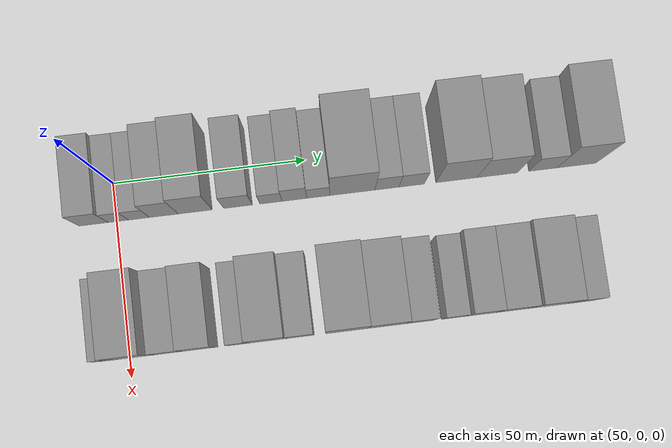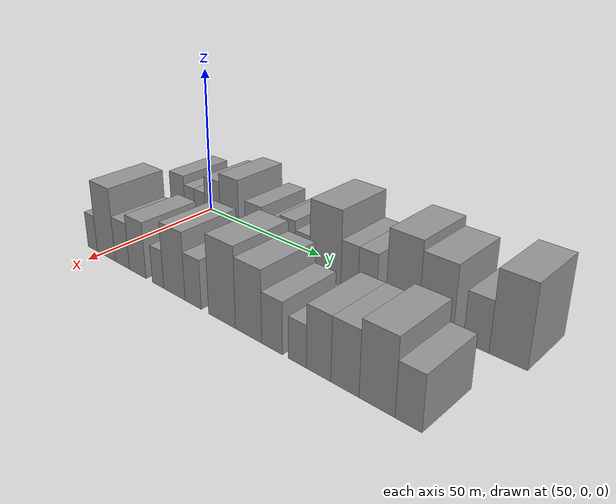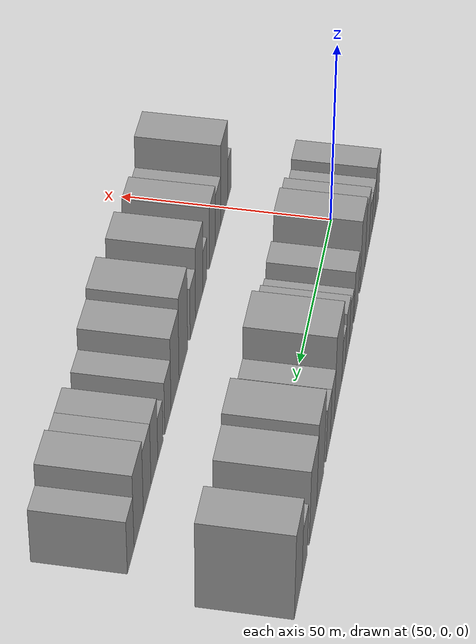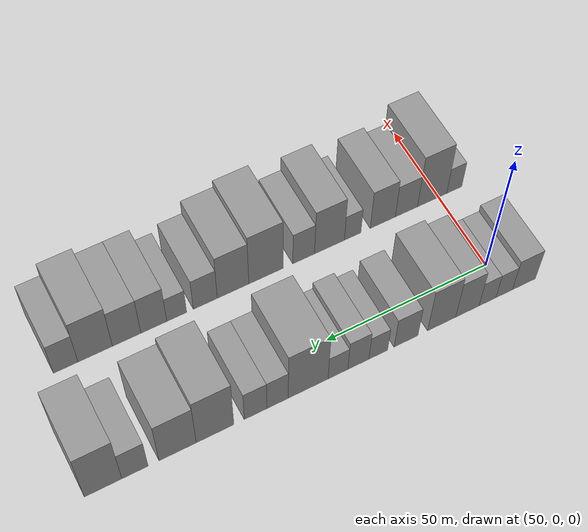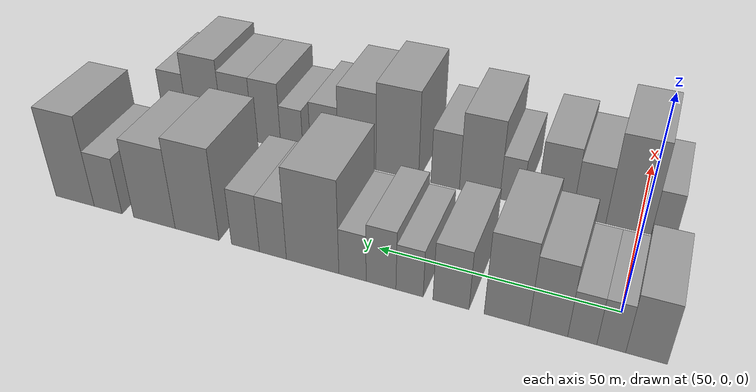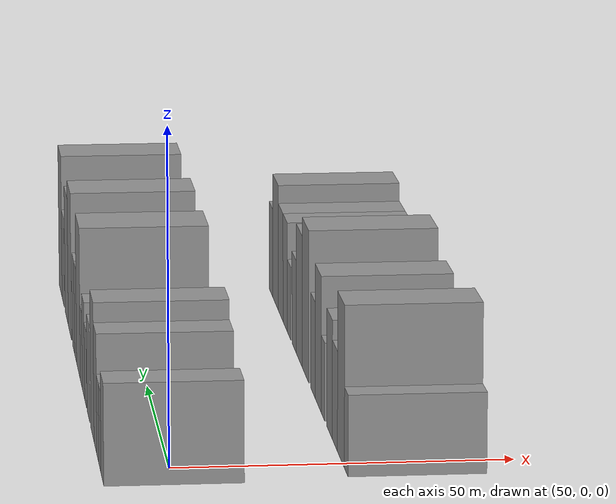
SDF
<sdf version="1.6">
 <world name="default">
  <model name="building_30">
   <static>1</static>
   <pose>50.0000 -5.8163 0 0.000000 0.000000 0.000000</pose>
   <link name="link">
    <pose>0 0 7.50 0 0 0</pose>
    <collision name="collision"><geometry><box><size>20.0000 7.4415 15.0000</size></box></geometry></collision>
    <visual name="visual">
     <cast_shadows>0</cast_shadows>
     <geometry><box><size>20.0000 7.4415 15.0000</size></box></geometry>
     <material>
      <script>
       <uri>model://grey_wall/materials/scripts</uri>
       <uri>model://grey_wall/materials/textures</uri>
       <name>vrc/grey_wall</name>
      </script>
     </material>
    </visual>
   </link>
  </model>
  <model name="building_31">
   <static>1</static>
   <pose>50.0000 0.5402 0 0.000000 0.000000 0.000000</pose>
   <link name="link">
    <pose>0 0 6.00 0 0 0</pose>
    <collision name="collision"><geometry><box><size>20.0000 5.2715 12.0000</size></box></geometry></collision>
    <visual name="visual">
     <cast_shadows>0</cast_shadows>
     <geometry><box><size>20.0000 5.2715 12.0000</size></box></geometry>
     <material>
      <script>
       <uri>model://grey_wall/materials/scripts</uri>
       <uri>model://grey_wall/materials/textures</uri>
       <name>vrc/grey_wall</name>
      </script>
     </material>
    </visual>
   </link>
  </model>
  <model name="building_32">
   <static>1</static>
   <pose>50.0000 5.8789 0 0.000000 0.000000 0.000000</pose>
   <link name="link">
    <pose>0 0 6.00 0 0 0</pose>
    <collision name="collision"><geometry><box><size>20.0000 5.4058 12.0000</size></box></geometry></collision>
    <visual name="visual">
     <cast_shadows>0</cast_shadows>
     <geometry><box><size>20.0000 5.4058 12.0000</size></box></geometry>
     <material>
      <script>
       <uri>model://grey_wall/materials/scripts</uri>
       <uri>model://grey_wall/materials/textures</uri>
       <name>vrc/grey_wall</name>
      </script>
     </material>
    </visual>
   </link>
  </model>
  <model name="building_33">
   <static>1</static>
   <pose>50.0000 12.2712 0 0.000000 0.000000 0.000000</pose>
   <link name="link">
    <pose>0 0 9.00 0 0 0</pose>
    <collision name="collision"><geometry><box><size>20.0000 7.3789 18.0000</size></box></geometry></collision>
    <visual name="visual">
     <cast_shadows>0</cast_shadows>
     <geometry><box><size>20.0000 7.3789 18.0000</size></box></geometry>
     <material>
      <script>
       <uri>model://grey_wall/materials/scripts</uri>
       <uri>model://grey_wall/materials/textures</uri>
       <name>vrc/grey_wall</name>
      </script>
     </material>
    </visual>
   </link>
  </model>
  <model name="building_34">
   <static>1</static>
   <pose>50.0000 20.3390 0 0.000000 0.000000 0.000000</pose>
   <link name="link">
    <pose>0 0 10.50 0 0 0</pose>
    <collision name="collision"><geometry><box><size>20.0000 8.7569 21.0000</size></box></geometry></collision>
    <visual name="visual">
     <cast_shadows>0</cast_shadows>
     <geometry><box><size>20.0000 8.7569 21.0000</size></box></geometry>
     <material>
      <script>
       <uri>model://grey_wall/materials/scripts</uri>
       <uri>model://grey_wall/materials/textures</uri>
       <name>vrc/grey_wall</name>
      </script>
     </material>
    </visual>
   </link>
  </model>
  <model name="building_35">
   <static>1</static>
   <pose>50.0000 31.3894 0 0.000000 0.000000 0.000000</pose>
   <link name="link">
    <pose>0 0 7.50 0 0 0</pose>
    <collision name="collision"><geometry><box><size>20.0000 7.3439 15.0000</size></box></geometry></collision>
    <visual name="visual">
     <cast_shadows>0</cast_shadows>
     <geometry><box><size>20.0000 7.3439 15.0000</size></box></geometry>
     <material>
      <script>
       <uri>model://grey_wall/materials/scripts</uri>
       <uri>model://grey_wall/materials/textures</uri>
       <name>vrc/grey_wall</name>
      </script>
     </material>
    </visual>
   </link>
  </model>
  <model name="building_36">
   <static>1</static>
   <pose>50.0000 39.9124 0 0.000000 0.000000 0.000000</pose>
   <link name="link">
    <pose>0 0 6.00 0 0 0</pose>
    <collision name="collision"><geometry><box><size>20.0000 5.7020 12.0000</size></box></geometry></collision>
    <visual name="visual">
     <cast_shadows>0</cast_shadows>
     <geometry><box><size>20.0000 5.7020 12.0000</size></box></geometry>
     <material>
      <script>
       <uri>model://grey_wall/materials/scripts</uri>
       <uri>model://grey_wall/materials/textures</uri>
       <name>vrc/grey_wall</name>
      </script>
     </material>
    </visual>
   </link>
  </model>
  <model name="building_37">
   <static>1</static>
   <pose>50.0000 45.9449 0 0.000000 0.000000 0.000000</pose>
   <link name="link">
    <pose>0 0 7.50 0 0 0</pose>
    <collision name="collision"><geometry><box><size>20.0000 6.3630 15.0000</size></box></geometry></collision>
    <visual name="visual">
     <cast_shadows>0</cast_shadows>
     <geometry><box><size>20.0000 6.3630 15.0000</size></box></geometry>
     <material>
      <script>
       <uri>model://grey_wall/materials/scripts</uri>
       <uri>model://grey_wall/materials/textures</uri>
       <name>vrc/grey_wall</name>
      </script>
     </material>
    </visual>
   </link>
  </model>
  <model name="building_38">
   <static>1</static>
   <pose>50.0000 52.0841 0 0.000000 0.000000 0.000000</pose>
   <link name="link">
    <pose>0 0 6.00 0 0 0</pose>
    <collision name="collision"><geometry><box><size>20.0000 5.9154 12.0000</size></box></geometry></collision>
    <visual name="visual">
     <cast_shadows>0</cast_shadows>
     <geometry><box><size>20.0000 5.9154 12.0000</size></box></geometry>
     <material>
      <script>
       <uri>model://grey_wall/materials/scripts</uri>
       <uri>model://grey_wall/materials/textures</uri>
       <name>vrc/grey_wall</name>
      </script>
     </material>
    </visual>
   </link>
  </model>
  <model name="building_39">
   <static>1</static>
   <pose>50.0000 60.9253 0 0.000000 0.000000 0.000000</pose>
   <link name="link">
    <pose>0 0 12.00 0 0 0</pose>
    <collision name="collision"><geometry><box><size>20.0000 11.7671 24.0000</size></box></geometry></collision>
    <visual name="visual">
     <cast_shadows>0</cast_shadows>
     <geometry><box><size>20.0000 11.7671 24.0000</size></box></geometry>
     <material>
      <script>
       <uri>model://grey_wall/materials/scripts</uri>
       <uri>model://grey_wall/materials/textures</uri>
       <name>vrc/grey_wall</name>
      </script>
     </material>
    </visual>
   </link>
  </model>
  <model name="building_40">
   <static>1</static>
   <pose>50.0000 69.9162 0 0.000000 0.000000 0.000000</pose>
   <link name="link">
    <pose>0 0 7.50 0 0 0</pose>
    <collision name="collision"><geometry><box><size>20.0000 6.2145 15.0000</size></box></geometry></collision>
    <visual name="visual">
     <cast_shadows>0</cast_shadows>
     <geometry><box><size>20.0000 6.2145 15.0000</size></box></geometry>
     <material>
      <script>
       <uri>model://grey_wall/materials/scripts</uri>
       <uri>model://grey_wall/materials/textures</uri>
       <name>vrc/grey_wall</name>
      </script>
     </material>
    </visual>
   </link>
  </model>
  <model name="building_41">
   <static>1</static>
   <pose>50.0000 76.3128 0 0.000000 0.000000 0.000000</pose>
   <link name="link">
    <pose>0 0 7.50 0 0 0</pose>
    <collision name="collision"><geometry><box><size>20.0000 6.5787 15.0000</size></box></geometry></collision>
    <visual name="visual">
     <cast_shadows>0</cast_shadows>
     <geometry><box><size>20.0000 6.5787 15.0000</size></box></geometry>
     <material>
      <script>
       <uri>model://grey_wall/materials/scripts</uri>
       <uri>model://grey_wall/materials/textures</uri>
       <name>vrc/grey_wall</name>
      </script>
     </material>
    </visual>
   </link>
  </model>
  <model name="building_42">
   <static>1</static>
   <pose>50.0000 87.9561 0 0.000000 0.000000 0.000000</pose>
   <link name="link">
    <pose>0 0 12.00 0 0 0</pose>
    <collision name="collision"><geometry><box><size>20.0000 10.7080 24.0000</size></box></geometry></collision>
    <visual name="visual">
     <cast_shadows>0</cast_shadows>
     <geometry><box><size>20.0000 10.7080 24.0000</size></box></geometry>
     <material>
      <script>
       <uri>model://grey_wall/materials/scripts</uri>
       <uri>model://grey_wall/materials/textures</uri>
       <name>vrc/grey_wall</name>
      </script>
     </material>
    </visual>
   </link>
  </model>
  <model name="building_43">
   <static>1</static>
   <pose>50.0000 98.5569 0 0.000000 0.000000 0.000000</pose>
   <link name="link">
    <pose>0 0 10.50 0 0 0</pose>
    <collision name="collision"><geometry><box><size>20.0000 10.4936 21.0000</size></box></geometry></collision>
    <visual name="visual">
     <cast_shadows>0</cast_shadows>
     <geometry><box><size>20.0000 10.4936 21.0000</size></box></geometry>
     <material>
      <script>
       <uri>model://grey_wall/materials/scripts</uri>
       <uri>model://grey_wall/materials/textures</uri>
       <name>vrc/grey_wall</name>
      </script>
     </material>
    </visual>
   </link>
  </model>
  <model name="building_44">
   <static>1</static>
   <pose>50.0000 110.4333 0 0.000000 0.000000 0.000000</pose>
   <link name="link">
    <pose>0 0 7.50 0 0 0</pose>
    <collision name="collision"><geometry><box><size>20.0000 7.2592 15.0000</size></box></geometry></collision>
    <visual name="visual">
     <cast_shadows>0</cast_shadows>
     <geometry><box><size>20.0000 7.2592 15.0000</size></box></geometry>
     <material>
      <script>
       <uri>model://grey_wall/materials/scripts</uri>
       <uri>model://grey_wall/materials/textures</uri>
       <name>vrc/grey_wall</name>
      </script>
     </material>
    </visual>
   </link>
  </model>
  <model name="building_45">
   <static>1</static>
   <pose>50.0000 119.1959 0 0.000000 0.000000 0.000000</pose>
   <link name="link">
    <pose>0 0 12.00 0 0 0</pose>
    <collision name="collision"><geometry><box><size>20.0000 10.2659 24.0000</size></box></geometry></collision>
    <visual name="visual">
     <cast_shadows>0</cast_shadows>
     <geometry><box><size>20.0000 10.2659 24.0000</size></box></geometry>
     <material>
      <script>
       <uri>model://grey_wall/materials/scripts</uri>
       <uri>model://grey_wall/materials/textures</uri>
       <name>vrc/grey_wall</name>
      </script>
     </material>
    </visual>
   </link>
  </model>
  <model name="building_96">
   <static>1</static>
   <pose>85.0000 -5.0979 0 0.000000 0.000000 0.000000</pose>
   <link name="link">
    <pose>0 0 6.00 0 0 0</pose>
    <collision name="collision"><geometry><box><size>20.0000 5.0297 12.0000</size></box></geometry></collision>
    <visual name="visual">
     <cast_shadows>0</cast_shadows>
     <geometry><box><size>20.0000 5.0297 12.0000</size></box></geometry>
     <material>
      <script>
       <uri>model://grey_wall/materials/scripts</uri>
       <uri>model://grey_wall/materials/textures</uri>
       <name>vrc/grey_wall</name>
      </script>
     </material>
    </visual>
   </link>
  </model>
  <model name="building_97">
   <static>1</static>
   <pose>85.0000 2.2299 0 0.000000 0.000000 0.000000</pose>
   <link name="link">
    <pose>0 0 12.00 0 0 0</pose>
    <collision name="collision"><geometry><box><size>20.0000 9.6257 24.0000</size></box></geometry></collision>
    <visual name="visual">
     <cast_shadows>0</cast_shadows>
     <geometry><box><size>20.0000 9.6257 24.0000</size></box></geometry>
     <material>
      <script>
       <uri>model://grey_wall/materials/scripts</uri>
       <uri>model://grey_wall/materials/textures</uri>
       <name>vrc/grey_wall</name>
      </script>
     </material>
    </visual>
   </link>
  </model>
  <model name="building_98">
   <static>1</static>
   <pose>85.0000 10.6538 0 0.000000 0.000000 0.000000</pose>
   <link name="link">
    <pose>0 0 7.50 0 0 0</pose>
    <collision name="collision"><geometry><box><size>20.0000 7.2222 15.0000</size></box></geometry></collision>
    <visual name="visual">
     <cast_shadows>0</cast_shadows>
     <geometry><box><size>20.0000 7.2222 15.0000</size></box></geometry>
     <material>
      <script>
       <uri>model://grey_wall/materials/scripts</uri>
       <uri>model://grey_wall/materials/textures</uri>
       <name>vrc/grey_wall</name>
      </script>
     </material>
    </visual>
   </link>
  </model>
  <model name="building_99">
   <static>1</static>
   <pose>85.0000 18.3174 0 0.000000 0.000000 0.000000</pose>
   <link name="link">
    <pose>0 0 9.00 0 0 0</pose>
    <collision name="collision"><geometry><box><size>20.0000 8.1050 18.0000</size></box></geometry></collision>
    <visual name="visual">
     <cast_shadows>0</cast_shadows>
     <geometry><box><size>20.0000 8.1050 18.0000</size></box></geometry>
     <material>
      <script>
       <uri>model://grey_wall/materials/scripts</uri>
       <uri>model://grey_wall/materials/textures</uri>
       <name>vrc/grey_wall</name>
      </script>
     </material>
    </visual>
   </link>
  </model>
  <model name="building_100">
   <static>1</static>
   <pose>85.0000 27.9980 0 0.000000 0.000000 0.000000</pose>
   <link name="link">
    <pose>0 0 6.00 0 0 0</pose>
    <collision name="collision"><geometry><box><size>20.0000 5.2563 12.0000</size></box></geometry></collision>
    <visual name="visual">
     <cast_shadows>0</cast_shadows>
     <geometry><box><size>20.0000 5.2563 12.0000</size></box></geometry>
     <material>
      <script>
       <uri>model://grey_wall/materials/scripts</uri>
       <uri>model://grey_wall/materials/textures</uri>
       <name>vrc/grey_wall</name>
      </script>
     </material>
    </visual>
   </link>
  </model>
  <model name="building_101">
   <static>1</static>
   <pose>85.0000 35.3439 0 0.000000 0.000000 0.000000</pose>
   <link name="link">
    <pose>0 0 10.50 0 0 0</pose>
    <collision name="collision"><geometry><box><size>20.0000 9.4355 21.0000</size></box></geometry></collision>
    <visual name="visual">
     <cast_shadows>0</cast_shadows>
     <geometry><box><size>20.0000 9.4355 21.0000</size></box></geometry>
     <material>
      <script>
       <uri>model://grey_wall/materials/scripts</uri>
       <uri>model://grey_wall/materials/textures</uri>
       <name>vrc/grey_wall</name>
      </script>
     </material>
    </visual>
   </link>
  </model>
  <model name="building_102">
   <static>1</static>
   <pose>85.0000 43.4659 0 0.000000 0.000000 0.000000</pose>
   <link name="link">
    <pose>0 0 7.50 0 0 0</pose>
    <collision name="collision"><geometry><box><size>20.0000 6.8085 15.0000</size></box></geometry></collision>
    <visual name="visual">
     <cast_shadows>0</cast_shadows>
     <geometry><box><size>20.0000 6.8085 15.0000</size></box></geometry>
     <material>
      <script>
       <uri>model://grey_wall/materials/scripts</uri>
       <uri>model://grey_wall/materials/textures</uri>
       <name>vrc/grey_wall</name>
      </script>
     </material>
    </visual>
   </link>
  </model>
  <model name="building_103">
   <static>1</static>
   <pose>85.0000 55.1387 0 0.000000 0.000000 0.000000</pose>
   <link name="link">
    <pose>0 0 12.00 0 0 0</pose>
    <collision name="collision"><geometry><box><size>20.0000 10.5371 24.0000</size></box></geometry></collision>
    <visual name="visual">
     <cast_shadows>0</cast_shadows>
     <geometry><box><size>20.0000 10.5371 24.0000</size></box></geometry>
     <material>
      <script>
       <uri>model://grey_wall/materials/scripts</uri>
       <uri>model://grey_wall/materials/textures</uri>
       <name>vrc/grey_wall</name>
      </script>
     </material>
    </visual>
   </link>
  </model>
  <model name="building_104">
   <static>1</static>
   <pose>85.0000 65.2038 0 0.000000 0.000000 0.000000</pose>
   <link name="link">
    <pose>0 0 10.50 0 0 0</pose>
    <collision name="collision"><geometry><box><size>20.0000 9.5932 21.0000</size></box></geometry></collision>
    <visual name="visual">
     <cast_shadows>0</cast_shadows>
     <geometry><box><size>20.0000 9.5932 21.0000</size></box></geometry>
     <material>
      <script>
       <uri>model://grey_wall/materials/scripts</uri>
       <uri>model://grey_wall/materials/textures</uri>
       <name>vrc/grey_wall</name>
      </script>
     </material>
    </visual>
   </link>
  </model>
  <model name="building_105">
   <static>1</static>
   <pose>85.0000 73.6062 0 0.000000 0.000000 0.000000</pose>
   <link name="link">
    <pose>0 0 7.50 0 0 0</pose>
    <collision name="collision"><geometry><box><size>20.0000 7.2116 15.0000</size></box></geometry></collision>
    <visual name="visual">
     <cast_shadows>0</cast_shadows>
     <geometry><box><size>20.0000 7.2116 15.0000</size></box></geometry>
     <material>
      <script>
       <uri>model://grey_wall/materials/scripts</uri>
       <uri>model://grey_wall/materials/textures</uri>
       <name>vrc/grey_wall</name>
      </script>
     </material>
    </visual>
   </link>
  </model>
  <model name="building_106">
   <static>1</static>
   <pose>85.0000 82.1538 0 0.000000 0.000000 0.000000</pose>
   <link name="link">
    <pose>0 0 6.00 0 0 0</pose>
    <collision name="collision"><geometry><box><size>20.0000 5.8837 12.0000</size></box></geometry></collision>
    <visual name="visual">
     <cast_shadows>0</cast_shadows>
     <geometry><box><size>20.0000 5.8837 12.0000</size></box></geometry>
     <material>
      <script>
       <uri>model://grey_wall/materials/scripts</uri>
       <uri>model://grey_wall/materials/textures</uri>
       <name>vrc/grey_wall</name>
      </script>
     </material>
    </visual>
   </link>
  </model>
  <model name="building_107">
   <static>1</static>
   <pose>85.0000 88.9101 0 0.000000 0.000000 0.000000</pose>
   <link name="link">
    <pose>0 0 9.00 0 0 0</pose>
    <collision name="collision"><geometry><box><size>20.0000 7.6291 18.0000</size></box></geometry></collision>
    <visual name="visual">
     <cast_shadows>0</cast_shadows>
     <geometry><box><size>20.0000 7.6291 18.0000</size></box></geometry>
     <material>
      <script>
       <uri>model://grey_wall/materials/scripts</uri>
       <uri>model://grey_wall/materials/textures</uri>
       <name>vrc/grey_wall</name>
      </script>
     </material>
    </visual>
   </link>
  </model>
  <model name="building_108">
   <static>1</static>
   <pose>85.0000 96.8719 0 0.000000 0.000000 0.000000</pose>
   <link name="link">
    <pose>0 0 9.00 0 0 0</pose>
    <collision name="collision"><geometry><box><size>20.0000 8.2944 18.0000</size></box></geometry></collision>
    <visual name="visual">
     <cast_shadows>0</cast_shadows>
     <geometry><box><size>20.0000 8.2944 18.0000</size></box></geometry>
     <material>
      <script>
       <uri>model://grey_wall/materials/scripts</uri>
       <uri>model://grey_wall/materials/textures</uri>
       <name>vrc/grey_wall</name>
      </script>
     </material>
    </visual>
   </link>
  </model>
  <model name="building_109">
   <static>1</static>
   <pose>85.0000 105.9787 0 0.000000 0.000000 0.000000</pose>
   <link name="link">
    <pose>0 0 10.50 0 0 0</pose>
    <collision name="collision"><geometry><box><size>20.0000 9.9191 21.0000</size></box></geometry></collision>
    <visual name="visual">
     <cast_shadows>0</cast_shadows>
     <geometry><box><size>20.0000 9.9191 21.0000</size></box></geometry>
     <material>
      <script>
       <uri>model://grey_wall/materials/scripts</uri>
       <uri>model://grey_wall/materials/textures</uri>
       <name>vrc/grey_wall</name>
      </script>
     </material>
    </visual>
   </link>
  </model>
  <model name="building_110">
   <static>1</static>
   <pose>85.0000 114.4518 0 0.000000 0.000000 0.000000</pose>
   <link name="link">
    <pose>0 0 7.50 0 0 0</pose>
    <collision name="collision"><geometry><box><size>20.0000 7.0272 15.0000</size></box></geometry></collision>
    <visual name="visual">
     <cast_shadows>0</cast_shadows>
     <geometry><box><size>20.0000 7.0272 15.0000</size></box></geometry>
     <material>
      <script>
       <uri>model://grey_wall/materials/scripts</uri>
       <uri>model://grey_wall/materials/textures</uri>
       <name>vrc/grey_wall</name>
      </script>
     </material>
    </visual>
   </link>
  </model>
 </world>
</sdf>
